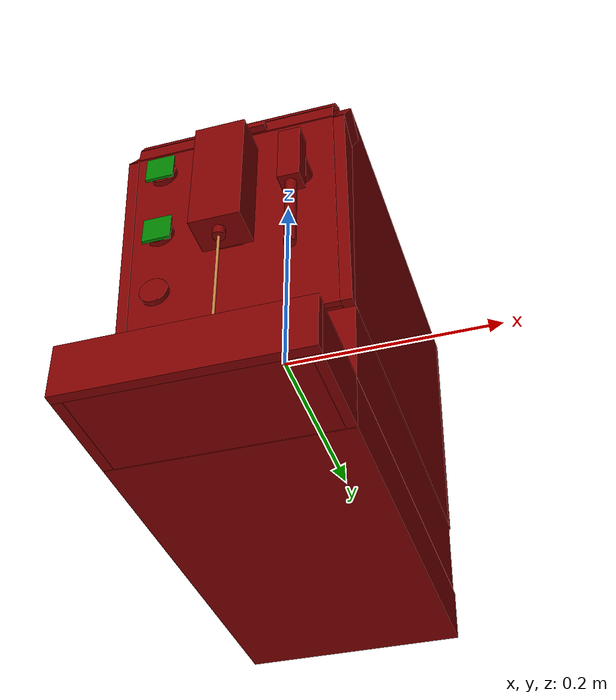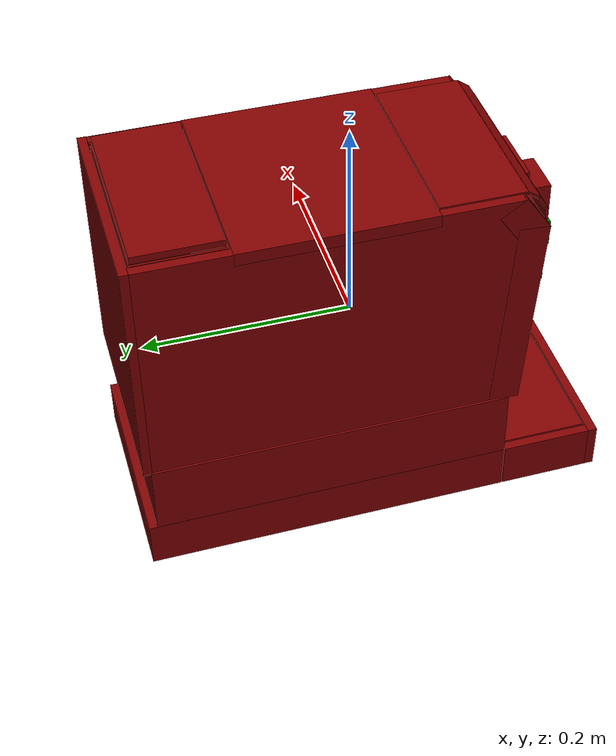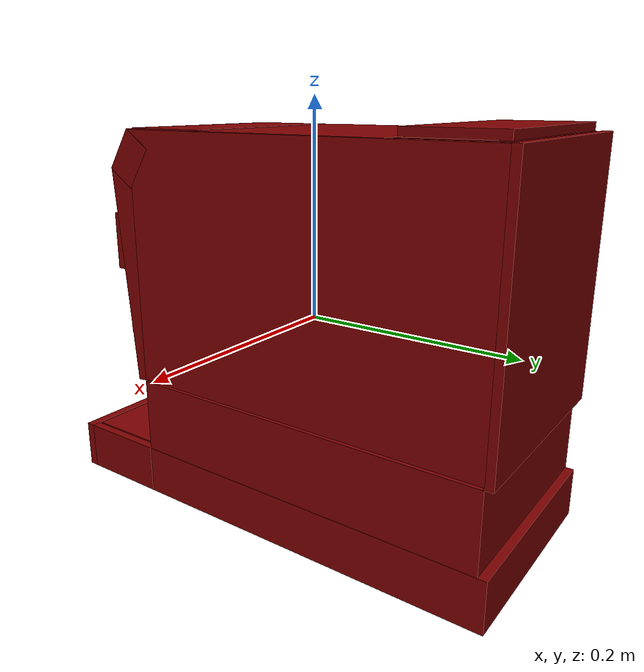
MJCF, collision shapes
<?xml version='1.0' encoding='UTF-8'?>
<mujoco model="model">
  <compiler angle="radian"/>
  <asset>
    <mesh file="visuals/Body001.obj" name="Body001_vis"/>
    <mesh file="visuals/Button001.obj" name="Button001_vis"/>
    <mesh file="visuals/Button002.obj" name="Button002_vis"/>
    <mesh file="visuals/Button003.obj" name="Button003_vis"/>
    <mesh file="visuals/Container001.obj" name="Container001_vis"/>
    <mesh file="visuals/Lever001.obj" name="Lever001_vis"/>
    <mesh file="visuals/Lid001.obj" name="Lid001_vis"/>
    <mesh file="visuals/Lid002.obj" name="Lid002_vis"/>
    <mesh file="visuals/Lid003.obj" name="Lid003_vis"/>
    <texture file="visuals/T_BC001.png" name="Body001_material" type="2d"/>
    <material name="Body001_material" rgba="1 1 1 1.0" texture="Body001_material" shininess="0.5" specular="0.3103448502657381"/>
    <texture file="visuals/T_BC001.png" name="Button001_material" type="2d"/>
    <material name="Button001_material" rgba="1 1 1 1.0" texture="Button001_material" shininess="0.5" specular="0.3103448502657381"/>
    <texture file="visuals/T_BC001.png" name="Button002_material" type="2d"/>
    <material name="Button002_material" rgba="1 1 1 1.0" texture="Button002_material" shininess="0.5" specular="0.3103448502657381"/>
    <texture file="visuals/T_BC001.png" name="Button003_material" type="2d"/>
    <material name="Button003_material" rgba="1 1 1 1.0" texture="Button003_material" shininess="0.5" specular="0.3103448502657381"/>
    <texture file="visuals/T_BC001.png" name="Container001_material" type="2d"/>
    <material name="Container001_material" rgba="1 1 1 1.0" texture="Container001_material" shininess="0.5" specular="0.3103448502657381"/>
    <texture file="visuals/T_BC001.png" name="Lid003_material" type="2d"/>
    <material name="Lid003_material" rgba="1 1 1 1.0" texture="Lid003_material" shininess="0.5" specular="0.3103448502657381"/>
    <texture file="visuals/T_BC001.png" name="Lever001_material" type="2d"/>
    <material name="Lever001_material" rgba="1 1 1 1.0" texture="Lever001_material" shininess="0.5" specular="0.3103448502657381"/>
    <texture file="visuals/T_BC001.png" name="Lid001_material" type="2d"/>
    <material name="Lid001_material" rgba="1 1 1 1.0" texture="Lid001_material" shininess="0.5" specular="0.3103448502657381"/>
    <texture file="visuals/T_BC001.png" name="Lid002_material" type="2d"/>
    <material name="Lid002_material" rgba="1 1 1 1.0" texture="Lid002_material" shininess="0.5" specular="0.3103448502657381"/>
  </asset>
  <default>
    <default class="visual">
      <geom conaffinity="0" contype="0" group="1" type="mesh"/>
    </default>
    <default class="collision">
      <geom group="0" rgba="0.5 0 0 0.5"/>
    </default>
    <default class="spawn">
      <geom group="0" rgba="1 1 1 0.5" contype="0" conaffinity="0"/>
      <site group="0" rgba="1 1 1 0.5"/>
    </default>
    <default class="region">
      <geom group="1" conaffinity="0" contype="0" rgba="0 1 0 0"/>
    </default>
  </default>
  <worldbody>
    <body>
      <body name="object">
        <geom class="collision" type="box" pos="-0.063967 -0.160697 0.110388" size="0.012454414740204811 0.0013370945816859603 0.012454287149012089" quat="1.0 0.0 0.0 0.0" name="start_button_1" rgba="0.0 0.5 0 0.5"/>
        <geom class="collision" type="box" pos="-0.064087 -0.153917 0.042665" size="0.012454338371753693 0.0015078996075317264 0.012454293668270111" quat="1.0 0.0 0.0 0.0" name="start_button_2" rgba="0.0 0.5 0 0.5"/>
        <site type="cylinder" rgba="0.8 0.5 0.25 1" size="0.0012856581015512347 0.06814693659543991" pos="0.000244 -0.171165 -0.066898" name="coffee_liquid"/>
        <site rgba="0 0 0 0" size="0.009999999776482582 0.009999999776482582" pos="-0.000000 -0.171348 -0.131065" name="receptacle_place_site"/>
        <geom mesh="Body001_vis" type="mesh" solimp="0.998 0.998 0.001" solref="0.001 1" density="100" friction="0.95 0.3 0.1" class="visual" material="Body001_material"/>
        <geom class="collision" type="cylinder" pos="0.062887 -0.156486 0.076066" size="0.008056246675550938 0.012253980152308941" quat="0.7071068286895752 0.7071067690849304 1.5700924318127872e-16 5.9269340452702814e-24"/>
        <geom class="collision" type="box" pos="0.000203 0.048563 -0.155746" size="0.10030192136764526 0.17532673478126526 0.023175692185759544" quat="1.0 0.0 0.0 0.0"/>
        <geom class="collision" type="box" pos="0.000203 0.044924 -0.097064" size="0.10030192136764526 0.17136108875274658 0.035418324172496796" quat="1.0 0.0 0.0 0.0"/>
        <geom class="collision" type="box" pos="-0.095493 0.044924 0.055872" size="0.004492629785090685 0.17136108875274658 0.11534146964550018" quat="1.0 0.0 0.0 0.0"/>
        <geom class="collision" type="box" pos="0.096021 0.044924 0.055872" size="0.004492629785090685 0.17136108875274658 0.11534154415130615" quat="1.0 0.0 0.0 0.0"/>
        <geom class="collision" type="box" pos="0.000203 0.219350 0.055110" size="0.10030192136764526 0.004088344983756542 0.1164228618144989" quat="1.0 0.0 0.0 0.0"/>
        <geom class="collision" type="box" pos="0.095549 -0.128720 0.038573" size="0.004956316668540239 0.014541011303663254 0.09908514469861984" quat="0.9991850256919861 0.040363918989896774 8.962589618156985e-18 -1.197008786156696e-25"/>
        <geom class="collision" type="box" pos="-0.095492 -0.128787 0.039396" size="0.004607123788446188 0.014541011303663254 0.0999106615781784" quat="0.9991850256919861 0.040363918989896774 8.962589618156985e-18 -1.197008786156696e-25"/>
        <geom class="collision" type="box" pos="0.000030 -0.140065 0.038483" size="0.09042280912399292 0.0032256769482046366 0.0999106615781784" quat="0.9991850256919861 0.040363918989896774 8.962589618156985e-18 -1.197008786156696e-25"/>
        <geom class="collision" type="box" pos="0.000368 -0.167999 0.063055" size="0.02207741141319275 0.017361324280500412 0.05549674108624458" quat="1.0 0.0 0.0 0.0"/>
        <geom class="collision" type="box" pos="0.000534 -0.171472 -0.160363" size="0.09165715426206589 0.043758608400821686 0.018558593466877937" quat="1.0 0.0 0.0 0.0"/>
        <geom class="collision" type="box" pos="0.000203 -0.219787 -0.155746" size="0.10030192136764526 0.00455628614872694 0.023175692185759544" quat="1.0 0.0 0.0 0.0"/>
        <geom class="collision" type="box" pos="-0.095611 -0.171472 -0.155746" size="0.004487762693315744 0.043758608400821686 0.023175692185759544" quat="1.0 0.0 0.0 0.0"/>
        <geom class="collision" type="box" pos="0.096348 -0.171472 -0.155746" size="0.004157003480941057 0.043758608400821686 0.023175692185759544" quat="1.0 0.0 0.0 0.0"/>
        <geom class="collision" type="box" pos="0.000172 -0.147311 0.046041" size="0.01033397950232029 0.008784784004092216 0.03007136471569538" quat="1.0 0.0 0.0 0.0"/>
        <geom class="collision" type="box" pos="0.096046 -0.127767 0.146156" size="0.00459122471511364 0.014541011303663254 0.021065162494778633" quat="0.9551610350608826 -0.29608675837516785 -6.574461287073516e-17 -2.3548367345564756e-23"/>
        <geom class="collision" type="box" pos="-0.095489 -0.127767 0.146156" size="0.00459122471511364 0.014541011303663254 0.021065162494778633" quat="0.9551610350608826 -0.29608675837516785 -6.574461287073516e-17 -2.3548367345564756e-23"/>
        <geom class="collision" type="box" pos="0.000203 0.039048 0.165705" size="0.10030192136764526 0.08968072384595871 0.006002367474138737" quat="1.0 0.0 0.0 0.0"/>
        <geom class="collision" type="box" pos="0.000203 0.039048 0.165705" size="0.10030192136764526 0.08968072384595871 0.006002367474138737" quat="1.0 0.0 0.0 0.0"/>
        <geom class="collision" type="box" pos="0.000203 -0.051599 0.133921" size="0.09669580310583115 0.00526750274002552 0.03513530641794205" quat="1.0 0.0 0.0 0.0"/>
        <geom class="collision" type="box" pos="0.000203 -0.098398 0.099471" size="0.09669580310583115 0.04499252885580063 0.005267506465315819" quat="1.0 0.0 0.0 0.0"/>
        <geom class="collision" type="cylinder" pos="0.000285 -0.171416 0.003900" size="0.005428990349173546 0.0040171523578464985" quat="1.0 0.0 0.0 0.0"/>
        <body name="Button001">
          <joint axis="0.0 1.0 0.0" pos="-0.063866 -0.151462 0.110446" limited="true" name="Button001_joint" range="0.0 0.005" type="slide" damping="1" frictionloss="1" armature=".01" stiffness="0.05"/>
          <geom mesh="Button001_vis" type="mesh" solimp="0.998 0.998 0.001" solref="0.001 1" density="100" friction="0.95 0.3 0.1" class="visual" material="Button001_material"/>
          <geom class="collision" type="cylinder" pos="-0.063681 -0.154464 0.110388" size="0.012454431504011154 0.0027574144769459963" quat="0.7071067094802856 0.7071068286895752 0.0 0.0"/>
        </body>
        <body name="Button002">
          <joint axis="0.0 1.0 0.0" pos="-0.063866 -0.144991 0.042695" limited="true" name="Button002_joint" range="0.0 0.005" type="slide" damping="1" frictionloss="1" armature=".01" stiffness="0.05"/>
          <geom mesh="Button002_vis" type="mesh" solimp="0.998 0.998 0.001" solref="0.001 1" density="100" friction="0.95 0.3 0.1" class="visual" material="Button002_material"/>
          <geom class="collision" type="cylinder" pos="-0.063933 -0.148847 0.042665" size="0.012454431504011154 0.0027574144769459963" quat="0.7071067094802856 0.7071068286895752 0.0 0.0"/>
        </body>
        <body name="Button003">
          <joint axis="0.0 1.0 0.0" pos="-0.063866 -0.139745 -0.022305" limited="true" name="Button003_joint" range="0.0 0.005" type="slide" damping="1" frictionloss="1" armature=".01" stiffness="0.05"/>
          <geom mesh="Button003_vis" type="mesh" solimp="0.998 0.998 0.001" solref="0.001 1" density="100" friction="0.95 0.3 0.1" class="visual" material="Button003_material"/>
          <geom class="collision" type="cylinder" pos="-0.063685 -0.146871 -0.022412" size="0.012454431504011154 0.0027574144769459963" quat="0.7071067094802856 0.7071068286895752 0.0 0.0"/>
        </body>
        <body name="Container001">
          <joint axis="0.0 0.0 1.0" pos="0.000302 0.171900 0.060156" limited="true" name="Container001_joint" range="0.0 0.1" type="slide" damping="1" frictionloss="1" armature=".01" stiffness="0.05"/>
          <geom mesh="Container001_vis" type="mesh" solimp="0.998 0.998 0.001" solref="0.001 1" density="100" friction="0.95 0.3 0.1" class="visual" material="Container001_material"/>
          <geom class="collision" type="box" pos="0.089514 0.171979 0.060235" size="0.001132889068685472 0.04197805002331734 0.11107354611158371" quat="1.0 0.0 0.0 0.0"/>
          <geom class="collision" type="box" pos="-0.089308 0.172155 0.060235" size="0.001132889068685472 0.04197805002331734 0.11107360571622849" quat="1.0 0.0 0.0 0.0"/>
          <geom class="collision" type="box" pos="0.000079 0.131299 0.060235" size="0.08835609257221222 0.0011226973729208112 0.11107519268989563" quat="1.0 0.0 0.0 0.0"/>
          <geom class="collision" type="box" pos="0.000079 0.212599 0.060235" size="0.08835609257221222 0.0011226973729208112 0.11107519268989563" quat="1.0 0.0 0.0 0.0"/>
          <geom class="collision" type="box" pos="0.000203 0.172220 -0.050151" size="0.08842023462057114 0.040272682905197144 0.0009827055037021637" quat="1.0 0.0 0.0 0.0"/>
          <body name="Lid003">
            <joint axis="0.0 0.0 1.0" pos="0.000302 0.172181 0.175330" limited="true" name="Lid003_joint" range="0.0 0.1" type="slide" damping="1" frictionloss="1" armature=".01" stiffness="0.05"/>
            <geom mesh="Lid003_vis" type="mesh" solimp="0.998 0.998 0.001" solref="0.001 1" density="100" friction="0.95 0.3 0.1" class="visual" material="Lid003_material"/>
            <geom class="collision" type="box" pos="0.000203 0.172220 0.175511" size="0.0884200781583786 0.040272682905197144 0.003477306105196476" quat="1.0 0.0 0.0 0.0"/>
          </body>
        </body>
        <body name="Lever001">
          <joint axis="0.0 -1.0 0.0" pos="0.062909 -0.176388 0.082613" limited="true" name="Lever001_joint" range="0.0 0.7853981633974483" type="hinge" damping="1" frictionloss="1" armature=".01" stiffness="1"/>
          <geom mesh="Lever001_vis" type="mesh" solimp="0.998 0.998 0.001" solref="0.001 1" density="100" friction="0.95 0.3 0.1" class="visual" material="Lever001_material"/>
          <geom class="collision" type="cylinder" pos="0.062887 -0.178095 0.004481" size="0.00493957381695509 0.035467665642499924" quat="1.0 0.0 0.0 0.0"/>
          <geom class="collision" type="box" pos="0.062971 -0.178304 0.063063" size="0.009267578832805157 0.008784784004092216 0.027356160804629326" quat="1.0 0.0 0.0 0.0"/>
        </body>
        <body name="Lid001">
          <joint axis="0.0 0.0 1.0" pos="0.000302 -0.172421 -0.133305" limited="true" name="Lid001_joint" range="0.0 0.05" type="slide" damping="1" frictionloss="1" armature=".01" stiffness="0.05"/>
          <geom mesh="Lid001_vis" type="mesh" solimp="0.998 0.998 0.001" solref="0.001 1" density="100" friction="0.95 0.3 0.1" class="visual" material="Lid001_material"/>
          <geom class="collision" type="box" pos="0.000534 -0.171472 -0.135645" size="0.089920274913311 0.0420563779771328 0.003075426910072565" quat="1.0 0.0 0.0 0.0"/>
        </body>
        <body name="Lid002">
          <joint axis="-1.0 0.0 0.0" pos="0.000292 -0.052199 0.171987" limited="true" name="Lid002_joint" range="0.0 1.5707963267948966" type="hinge" damping="1" frictionloss="1" armature=".01" stiffness="0.05"/>
          <geom mesh="Lid002_vis" type="mesh" solimp="0.998 0.998 0.001" solref="0.001 1" density="100" friction="0.95 0.3 0.1" class="visual" material="Lid002_material"/>
          <geom class="collision" type="box" pos="0.000203 -0.091925 0.170728" size="0.09019233286380768 0.0402727909386158 0.0012571030529215932" quat="1.0 0.0 0.0 0.0"/>
          <geom class="collision" type="box" pos="0.000203 -0.137118 0.166881" size="0.09019233286380768 0.007249854505062103 0.0012571030529215932" quat="0.9543087482452393 0.2988223135471344 -6.635187593691239e-17 2.7366129116141502e-24"/>
          <geom class="collision" type="box" pos="0.000203 -0.146502 0.156785" size="0.09019233286380768 0.007249854505062103 0.0012571030529215932" quat="0.8693401217460632 0.4942142963409424 -1.097376314142167e-16 -4.3725526568614845e-24"/>
          <geom class="collision" type="box" pos="0.000203 -0.150486 0.144602" size="0.09019233286380768 0.007249854505062103 0.0012571030529215932" quat="0.7456978559494019 0.6662842631340027 -1.4794482597535523e-16 -3.7330905686062066e-24"/>
          <geom class="collision" type="box" pos="0.000203 -0.155177 0.141431" size="0.030129704624414444 0.0038788029924035072 0.0027481643483042717" quat="1.0 0.0 0.0 0.0"/>
        </body>
        <geom class="region" name="reg_main" type="box" pos="0.0 0.0 9.999999999996123e-06" size="0.100511 0.223855 0.17898399999999998"/>
      </body>
    </body>
  </worldbody>
  <actuator>
    <motor name="Button001_joint_actuator" joint="Button001_joint" gear="0.5"/>
    <motor name="Button002_joint_actuator" joint="Button002_joint" gear="0.5"/>
    <motor name="Button003_joint_actuator" joint="Button003_joint" gear="0.5"/>
    <motor name="Container001_joint_actuator" joint="Container001_joint" gear="10"/>
    <motor name="Lever001_joint_actuator" joint="Lever001_joint" gear="10"/>
    <motor name="Lid001_joint_actuator" joint="Lid001_joint" gear="10"/>
    <motor name="Lid002_joint_actuator" joint="Lid002_joint" gear="10"/>
    <motor name="Lid003_joint_actuator" joint="Lid003_joint" gear="10"/>
  </actuator>
</mujoco>
